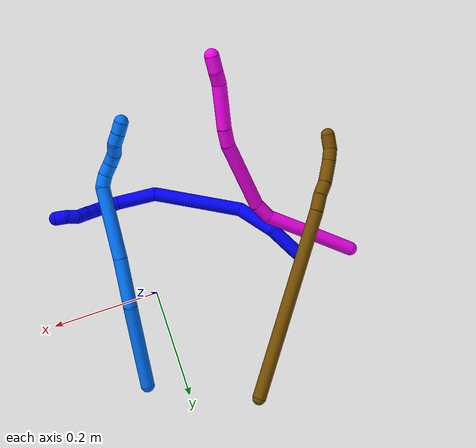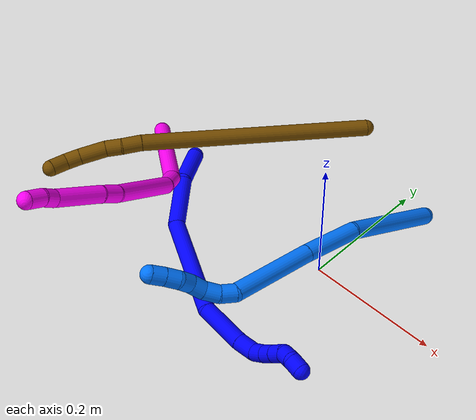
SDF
<sdf version="1.7">
 <world name="default">
  <model name="1">
   <static>0</static>
   <link name="1">
    <collision name="collision-cylinder-e_1_1_4">
     <pose>0.028466 -0.010663 0.007823 0.93786 1.13589 0.625313</pose>
     <geometry><cylinder><radius>0.0125</radius><length>0.062776</length></cylinder></geometry>
     <surface>
      <friction><ode><mu>1.16</mu><mu2>1.16</mu2><slip1>0</slip1><slip2>0</slip2></ode></friction>
      <contact><ode><kp>1e+06</kp><kd>1</kd><max_vel>0</max_vel><min_depth>0.001</min_depth></ode></contact>
     </surface>
    </collision>
    <visual name="visual-cylinder-e_1_1_4">
     <pose>0.028466 -0.010663 0.007823 0.93786 1.13589 0.625313</pose>
     <geometry><cylinder><radius>0.0125</radius><length>0.062776</length></cylinder></geometry>
     <material><ambient>0 0 1 1</ambient></material>
    </visual>
    <collision name="collision-cylinder-e_2_4_5">
     <pose>0.090402 -0.018773 0.031817 -0.156565 1.11587 -0.097831</pose>
     <geometry><cylinder><radius>0.0125</radius><length>0.074519</length></cylinder></geometry>
     <surface>
      <friction><ode><mu>1.16</mu><mu2>1.16</mu2><slip1>0</slip1><slip2>0</slip2></ode></friction>
      <contact><ode><kp>1e+06</kp><kd>1</kd><max_vel>0</max_vel><min_depth>0.001</min_depth></ode></contact>
     </surface>
    </collision>
    <visual name="visual-cylinder-e_2_4_5">
     <pose>0.090402 -0.018773 0.031817 -0.156565 1.11587 -0.097831</pose>
     <geometry><cylinder><radius>0.0125</radius><length>0.074519</length></cylinder></geometry>
     <material><ambient>0 0 1 1</ambient></material>
    </visual>
    <collision name="collision-cylinder-e_3_5_6">
     <pose>0.17591 -0.033404 0.107999 0.278877 0.694913 0.101567</pose>
     <geometry><cylinder><radius>0.0125</radius><length>0.162536</length></cylinder></geometry>
     <surface>
      <friction><ode><mu>1.16</mu><mu2>1.16</mu2><slip1>0</slip1><slip2>0</slip2></ode></friction>
      <contact><ode><kp>1e+06</kp><kd>1</kd><max_vel>0</max_vel><min_depth>0.001</min_depth></ode></contact>
     </surface>
    </collision>
    <visual name="visual-cylinder-e_3_5_6">
     <pose>0.17591 -0.033404 0.107999 0.278877 0.694913 0.101567</pose>
     <geometry><cylinder><radius>0.0125</radius><length>0.162536</length></cylinder></geometry>
     <material><ambient>0 0 1 1</ambient></material>
    </visual>
    <collision name="collision-cylinder-e_4_6_7">
     <pose>0.23801 -0.056555 0.201244 0.177658 0.289643 0.025977</pose>
     <geometry><cylinder><radius>0.0125</radius><length>0.070466</length></cylinder></geometry>
     <surface>
      <friction><ode><mu>1.16</mu><mu2>1.16</mu2><slip1>0</slip1><slip2>0</slip2></ode></friction>
      <contact><ode><kp>1e+06</kp><kd>1</kd><max_vel>0</max_vel><min_depth>0.001</min_depth></ode></contact>
     </surface>
    </collision>
    <visual name="visual-cylinder-e_4_6_7">
     <pose>0.23801 -0.056555 0.201244 0.177658 0.289643 0.025977</pose>
     <geometry><cylinder><radius>0.0125</radius><length>0.070466</length></cylinder></geometry>
     <material><ambient>0 0 1 1</ambient></material>
    </visual>
    <collision name="collision-cylinder-e_5_7_8">
     <pose>0.250615 -0.067047 0.248122 0.320253 0.175039 0.028341</pose>
     <geometry><cylinder><radius>0.0125</radius><length>0.029194</length></cylinder></geometry>
     <surface>
      <friction><ode><mu>1.16</mu><mu2>1.16</mu2><slip1>0</slip1><slip2>0</slip2></ode></friction>
      <contact><ode><kp>1e+06</kp><kd>1</kd><max_vel>0</max_vel><min_depth>0.001</min_depth></ode></contact>
     </surface>
    </collision>
    <visual name="visual-cylinder-e_5_7_8">
     <pose>0.250615 -0.067047 0.248122 0.320253 0.175039 0.028341</pose>
     <geometry><cylinder><radius>0.0125</radius><length>0.029194</length></cylinder></geometry>
     <material><ambient>0 0 1 1</ambient></material>
    </visual>
    <collision name="collision-cylinder-e_6_8_9">
     <pose>0.252883 -0.07829 0.269325 0.726447 -0.027111 -0.010305</pose>
     <geometry><cylinder><radius>0.0125</radius><length>0.020235</length></cylinder></geometry>
     <surface>
      <friction><ode><mu>1.16</mu><mu2>1.16</mu2><slip1>0</slip1><slip2>0</slip2></ode></friction>
      <contact><ode><kp>1e+06</kp><kd>1</kd><max_vel>0</max_vel><min_depth>0.001</min_depth></ode></contact>
     </surface>
    </collision>
    <visual name="visual-cylinder-e_6_8_9">
     <pose>0.252883 -0.07829 0.269325 0.726447 -0.027111 -0.010305</pose>
     <geometry><cylinder><radius>0.0125</radius><length>0.020235</length></cylinder></geometry>
     <material><ambient>0 0 1 1</ambient></material>
    </visual>
    <collision name="collision-cylinder-e_7_9_10">
     <pose>0.252086 -0.092704 0.283326 0.87398 -0.052032 -0.024309</pose>
     <geometry><cylinder><radius>0.0125</radius><length>0.020098</length></cylinder></geometry>
     <surface>
      <friction><ode><mu>1.16</mu><mu2>1.16</mu2><slip1>0</slip1><slip2>0</slip2></ode></friction>
      <contact><ode><kp>1e+06</kp><kd>1</kd><max_vel>0</max_vel><min_depth>0.001</min_depth></ode></contact>
     </surface>
    </collision>
    <visual name="visual-cylinder-e_7_9_10">
     <pose>0.252086 -0.092704 0.283326 0.87398 -0.052032 -0.024309</pose>
     <geometry><cylinder><radius>0.0125</radius><length>0.020098</length></cylinder></geometry>
     <material><ambient>0 0 1 1</ambient></material>
    </visual>
    <collision name="collision-cylinder-e_8_10_11">
     <pose>0.250657 -0.108091 0.29617 0.876581 -0.09039 -0.042388</pose>
     <geometry><cylinder><radius>0.0125</radius><length>0.020097</length></cylinder></geometry>
     <surface>
      <friction><ode><mu>1.16</mu><mu2>1.16</mu2><slip1>0</slip1><slip2>0</slip2></ode></friction>
      <contact><ode><kp>1e+06</kp><kd>1</kd><max_vel>0</max_vel><min_depth>0.001</min_depth></ode></contact>
     </surface>
    </collision>
    <visual name="visual-cylinder-e_8_10_11">
     <pose>0.250657 -0.108091 0.29617 0.876581 -0.09039 -0.042388</pose>
     <geometry><cylinder><radius>0.0125</radius><length>0.020097</length></cylinder></geometry>
     <material><ambient>0 0 1 1</ambient></material>
    </visual>
    <collision name="collision-cylinder-e_9_11_12">
     <pose>0.253348 -0.121557 0.309914 0.666477 0.367687 0.12855</pose>
     <geometry><cylinder><radius>0.0125</radius><length>0.02002</length></cylinder></geometry>
     <surface>
      <friction><ode><mu>1.16</mu><mu2>1.16</mu2><slip1>0</slip1><slip2>0</slip2></ode></friction>
      <contact><ode><kp>1e+06</kp><kd>1</kd><max_vel>0</max_vel><min_depth>0.001</min_depth></ode></contact>
     </surface>
    </collision>
    <visual name="visual-cylinder-e_9_11_12">
     <pose>0.253348 -0.121557 0.309914 0.666477 0.367687 0.12855</pose>
     <geometry><cylinder><radius>0.0125</radius><length>0.02002</length></cylinder></geometry>
     <material><ambient>0 0 1 1</ambient></material>
    </visual>
    <collision name="collision-cylinder-e_10_12_2">
     <pose>0.260594 -0.128933 0.326459 0.172205 0.372349 0.032513</pose>
     <geometry><cylinder><radius>0.0125</radius><length>0.020058</length></cylinder></geometry>
     <surface>
      <friction><ode><mu>1.16</mu><mu2>1.16</mu2><slip1>0</slip1><slip2>0</slip2></ode></friction>
      <contact><ode><kp>1e+06</kp><kd>1</kd><max_vel>0</max_vel><min_depth>0.001</min_depth></ode></contact>
     </surface>
    </collision>
    <visual name="visual-cylinder-e_10_12_2">
     <pose>0.260594 -0.128933 0.326459 0.172205 0.372349 0.032513</pose>
     <geometry><cylinder><radius>0.0125</radius><length>0.020058</length></cylinder></geometry>
     <material><ambient>0 0 1 1</ambient></material>
    </visual>
    <collision name="collision-sphere-2">
     <pose>0.264243 -0.130533 0.335663 0 -0 0</pose>
     <geometry><sphere><radius>0.0125</radius></sphere></geometry>
     <surface>
      <friction><ode><mu>1.16</mu><mu2>1.16</mu2><slip1>0</slip1><slip2>0</slip2></ode></friction>
      <contact><ode><kp>1e+06</kp><kd>1</kd><max_vel>0</max_vel><min_depth>0.001</min_depth></ode></contact>
     </surface>
    </collision>
    <visual name="visual-sphere-2">
     <pose>0.264243 -0.130533 0.335663 0 -0 0</pose>
     <geometry><sphere><radius>0.0125</radius></sphere></geometry>
     <material><ambient>0 0 1 1</ambient></material>
    </visual>
    <collision name="collision-sphere-12">
     <pose>0.256946 -0.127332 0.317256 0 -0 0</pose>
     <geometry><sphere><radius>0.0125</radius></sphere></geometry>
     <surface>
      <friction><ode><mu>1.16</mu><mu2>1.16</mu2><slip1>0</slip1><slip2>0</slip2></ode></friction>
      <contact><ode><kp>1e+06</kp><kd>1</kd><max_vel>0</max_vel><min_depth>0.001</min_depth></ode></contact>
     </surface>
    </collision>
    <visual name="visual-sphere-12">
     <pose>0.256946 -0.127332 0.317256 0 -0 0</pose>
     <geometry><sphere><radius>0.0125</radius></sphere></geometry>
     <material><ambient>0 0 1 1</ambient></material>
    </visual>
    <collision name="collision-sphere-11">
     <pose>0.24975 -0.115783 0.302572 0 -0 0</pose>
     <geometry><sphere><radius>0.0125</radius></sphere></geometry>
     <surface>
      <friction><ode><mu>1.16</mu><mu2>1.16</mu2><slip1>0</slip1><slip2>0</slip2></ode></friction>
      <contact><ode><kp>1e+06</kp><kd>1</kd><max_vel>0</max_vel><min_depth>0.001</min_depth></ode></contact>
     </surface>
    </collision>
    <visual name="visual-sphere-11">
     <pose>0.24975 -0.115783 0.302572 0 -0 0</pose>
     <geometry><sphere><radius>0.0125</radius></sphere></geometry>
     <material><ambient>0 0 1 1</ambient></material>
    </visual>
    <collision name="collision-sphere-10">
     <pose>0.251564 -0.1004 0.289767 0 -0 0</pose>
     <geometry><sphere><radius>0.0125</radius></sphere></geometry>
     <surface>
      <friction><ode><mu>1.16</mu><mu2>1.16</mu2><slip1>0</slip1><slip2>0</slip2></ode></friction>
      <contact><ode><kp>1e+06</kp><kd>1</kd><max_vel>0</max_vel><min_depth>0.001</min_depth></ode></contact>
     </surface>
    </collision>
    <visual name="visual-sphere-10">
     <pose>0.251564 -0.1004 0.289767 0 -0 0</pose>
     <geometry><sphere><radius>0.0125</radius></sphere></geometry>
     <material><ambient>0 0 1 1</ambient></material>
    </visual>
    <collision name="collision-sphere-9">
     <pose>0.252609 -0.085008 0.276886 0 -0 0</pose>
     <geometry><sphere><radius>0.0125</radius></sphere></geometry>
     <surface>
      <friction><ode><mu>1.16</mu><mu2>1.16</mu2><slip1>0</slip1><slip2>0</slip2></ode></friction>
      <contact><ode><kp>1e+06</kp><kd>1</kd><max_vel>0</max_vel><min_depth>0.001</min_depth></ode></contact>
     </surface>
    </collision>
    <visual name="visual-sphere-9">
     <pose>0.252609 -0.085008 0.276886 0 -0 0</pose>
     <geometry><sphere><radius>0.0125</radius></sphere></geometry>
     <material><ambient>0 0 1 1</ambient></material>
    </visual>
    <collision name="collision-sphere-4">
     <pose>0.056932 -0.021326 0.015645 0 -0 0</pose>
     <geometry><sphere><radius>0.0125</radius></sphere></geometry>
     <surface>
      <friction><ode><mu>1.16</mu><mu2>1.16</mu2><slip1>0</slip1><slip2>0</slip2></ode></friction>
      <contact><ode><kp>1e+06</kp><kd>1</kd><max_vel>0</max_vel><min_depth>0.001</min_depth></ode></contact>
     </surface>
    </collision>
    <visual name="visual-sphere-4">
     <pose>0.056932 -0.021326 0.015645 0 -0 0</pose>
     <geometry><sphere><radius>0.0125</radius></sphere></geometry>
     <material><ambient>0 0 1 1</ambient></material>
    </visual>
    <collision name="collision-sphere-1">
     <geometry><sphere><radius>0.0125</radius></sphere></geometry>
     <surface>
      <friction><ode><mu>1.16</mu><mu2>1.16</mu2><slip1>0</slip1><slip2>0</slip2></ode></friction>
      <contact><ode><kp>1e+06</kp><kd>1</kd><max_vel>0</max_vel><min_depth>0.001</min_depth></ode></contact>
     </surface>
    </collision>
    <visual name="visual-sphere-1">
     <geometry><sphere><radius>0.0125</radius></sphere></geometry>
     <material><ambient>0 0 1 1</ambient></material>
    </visual>
    <collision name="collision-sphere-8">
     <pose>0.253157 -0.071572 0.261765 0 -0 0</pose>
     <geometry><sphere><radius>0.0125</radius></sphere></geometry>
     <surface>
      <friction><ode><mu>1.16</mu><mu2>1.16</mu2><slip1>0</slip1><slip2>0</slip2></ode></friction>
      <contact><ode><kp>1e+06</kp><kd>1</kd><max_vel>0</max_vel><min_depth>0.001</min_depth></ode></contact>
     </surface>
    </collision>
    <visual name="visual-sphere-8">
     <pose>0.253157 -0.071572 0.261765 0 -0 0</pose>
     <geometry><sphere><radius>0.0125</radius></sphere></geometry>
     <material><ambient>0 0 1 1</ambient></material>
    </visual>
    <collision name="collision-sphere-5">
     <pose>0.123873 -0.016221 0.047988 0 -0 0</pose>
     <geometry><sphere><radius>0.0125</radius></sphere></geometry>
     <surface>
      <friction><ode><mu>1.16</mu><mu2>1.16</mu2><slip1>0</slip1><slip2>0</slip2></ode></friction>
      <contact><ode><kp>1e+06</kp><kd>1</kd><max_vel>0</max_vel><min_depth>0.001</min_depth></ode></contact>
     </surface>
    </collision>
    <visual name="visual-sphere-5">
     <pose>0.123873 -0.016221 0.047988 0 -0 0</pose>
     <geometry><sphere><radius>0.0125</radius></sphere></geometry>
     <material><ambient>0 0 1 1</ambient></material>
    </visual>
    <collision name="collision-sphere-6">
     <pose>0.227947 -0.050588 0.16801 0 -0 0</pose>
     <geometry><sphere><radius>0.0125</radius></sphere></geometry>
     <surface>
      <friction><ode><mu>1.16</mu><mu2>1.16</mu2><slip1>0</slip1><slip2>0</slip2></ode></friction>
      <contact><ode><kp>1e+06</kp><kd>1</kd><max_vel>0</max_vel><min_depth>0.001</min_depth></ode></contact>
     </surface>
    </collision>
    <visual name="visual-sphere-6">
     <pose>0.227947 -0.050588 0.16801 0 -0 0</pose>
     <geometry><sphere><radius>0.0125</radius></sphere></geometry>
     <material><ambient>0 0 1 1</ambient></material>
    </visual>
    <collision name="collision-sphere-7">
     <pose>0.248073 -0.062522 0.234479 0 -0 0</pose>
     <geometry><sphere><radius>0.0125</radius></sphere></geometry>
     <surface>
      <friction><ode><mu>1.16</mu><mu2>1.16</mu2><slip1>0</slip1><slip2>0</slip2></ode></friction>
      <contact><ode><kp>1e+06</kp><kd>1</kd><max_vel>0</max_vel><min_depth>0.001</min_depth></ode></contact>
     </surface>
    </collision>
    <visual name="visual-sphere-7">
     <pose>0.248073 -0.062522 0.234479 0 -0 0</pose>
     <geometry><sphere><radius>0.0125</radius></sphere></geometry>
     <material><ambient>0 0 1 1</ambient></material>
    </visual>
    <inertial>
     <pose>0.173447 -0.048159 0.143378 0 -0 0</pose>
     <mass>0.5</mass>
     <inertia>
      <ixx>0.000397</ixx>
      <ixy>0</ixy>
      <ixz>0</ixz>
      <iyy>0.000476</iyy>
      <iyz>0</iyz>
      <izz>-0.000179</izz>
     </inertia>
    </inertial>
   </link>
   <pose>-0.270213 0.012287 0.039885 -1.75525 0.186822 -1.37302</pose>
  </model>
  <model name="10">
   <static>0</static>
   <link name="10">
    <collision name="collision-cylinder-e_1_1_4">
     <pose>-0.002764 0.005799 0.043371 -0.132924 -0.063086 0.0042</pose>
     <geometry><cylinder><radius>0.0125</radius><length>0.087688</length></cylinder></geometry>
     <surface>
      <friction><ode><mu>1.16</mu><mu2>1.16</mu2><slip1>0</slip1><slip2>0</slip2></ode></friction>
      <contact><ode><kp>1e+06</kp><kd>1</kd><max_vel>0</max_vel><min_depth>0.001</min_depth></ode></contact>
     </surface>
    </collision>
    <visual name="visual-cylinder-e_1_1_4">
     <pose>-0.002764 0.005799 0.043371 -0.132924 -0.063086 0.0042</pose>
     <geometry><cylinder><radius>0.0125</radius><length>0.087688</length></cylinder></geometry>
     <material><ambient>1 0 0.964706 1</ambient></material>
    </visual>
    <collision name="collision-cylinder-e_2_4_5">
     <pose>-0.007299 0.017861 0.129582 -0.145164 -0.040886 0.002973</pose>
     <geometry><cylinder><radius>0.0125</radius><length>0.086664</length></cylinder></geometry>
     <surface>
      <friction><ode><mu>1.16</mu><mu2>1.16</mu2><slip1>0</slip1><slip2>0</slip2></ode></friction>
      <contact><ode><kp>1e+06</kp><kd>1</kd><max_vel>0</max_vel><min_depth>0.001</min_depth></ode></contact>
     </surface>
    </collision>
    <visual name="visual-cylinder-e_2_4_5">
     <pose>-0.007299 0.017861 0.129582 -0.145164 -0.040886 0.002973</pose>
     <geometry><cylinder><radius>0.0125</radius><length>0.086664</length></cylinder></geometry>
     <material><ambient>1 0 0.964706 1</ambient></material>
    </visual>
    <collision name="collision-cylinder-e_3_5_6">
     <pose>-0.012014 0.020205 0.188835 0.234375 -0.172709 -0.020383</pose>
     <geometry><cylinder><radius>0.0125</radius><length>0.034259</length></cylinder></geometry>
     <surface>
      <friction><ode><mu>1.16</mu><mu2>1.16</mu2><slip1>0</slip1><slip2>0</slip2></ode></friction>
      <contact><ode><kp>1e+06</kp><kd>1</kd><max_vel>0</max_vel><min_depth>0.001</min_depth></ode></contact>
     </surface>
    </collision>
    <visual name="visual-cylinder-e_3_5_6">
     <pose>-0.012014 0.020205 0.188835 0.234375 -0.172709 -0.020383</pose>
     <geometry><cylinder><radius>0.0125</radius><length>0.034259</length></cylinder></geometry>
     <material><ambient>1 0 0.964706 1</ambient></material>
    </visual>
    <collision name="collision-cylinder-e_4_6_7">
     <pose>-0.036975 -0.014791 0.260003 0.516241 -0.336411 -0.089603</pose>
     <geometry><cylinder><radius>0.0125</radius><length>0.133396</length></cylinder></geometry>
     <surface>
      <friction><ode><mu>1.16</mu><mu2>1.16</mu2><slip1>0</slip1><slip2>0</slip2></ode></friction>
      <contact><ode><kp>1e+06</kp><kd>1</kd><max_vel>0</max_vel><min_depth>0.001</min_depth></ode></contact>
     </surface>
    </collision>
    <visual name="visual-cylinder-e_4_6_7">
     <pose>-0.036975 -0.014791 0.260003 0.516241 -0.336411 -0.089603</pose>
     <geometry><cylinder><radius>0.0125</radius><length>0.133396</length></cylinder></geometry>
     <material><ambient>1 0 0.964706 1</ambient></material>
    </visual>
    <collision name="collision-cylinder-e_5_7_8">
     <pose>-0.064152 -0.055715 0.3254 0.746562 -0.341911 -0.135021</pose>
     <geometry><cylinder><radius>0.0125</radius><length>0.030779</length></cylinder></geometry>
     <surface>
      <friction><ode><mu>1.16</mu><mu2>1.16</mu2><slip1>0</slip1><slip2>0</slip2></ode></friction>
      <contact><ode><kp>1e+06</kp><kd>1</kd><max_vel>0</max_vel><min_depth>0.001</min_depth></ode></contact>
     </surface>
    </collision>
    <visual name="visual-cylinder-e_5_7_8">
     <pose>-0.064152 -0.055715 0.3254 0.746562 -0.341911 -0.135021</pose>
     <geometry><cylinder><radius>0.0125</radius><length>0.030779</length></cylinder></geometry>
     <material><ambient>1 0 0.964706 1</ambient></material>
    </visual>
    <collision name="collision-cylinder-e_6_8_9">
     <pose>-0.077958 -0.094463 0.360178 0.875005 -0.225703 -0.10592</pose>
     <geometry><cylinder><radius>0.0125</radius><length>0.077269</length></cylinder></geometry>
     <surface>
      <friction><ode><mu>1.16</mu><mu2>1.16</mu2><slip1>0</slip1><slip2>0</slip2></ode></friction>
      <contact><ode><kp>1e+06</kp><kd>1</kd><max_vel>0</max_vel><min_depth>0.001</min_depth></ode></contact>
     </surface>
    </collision>
    <visual name="visual-cylinder-e_6_8_9">
     <pose>-0.077958 -0.094463 0.360178 0.875005 -0.225703 -0.10592</pose>
     <geometry><cylinder><radius>0.0125</radius><length>0.077269</length></cylinder></geometry>
     <material><ambient>1 0 0.964706 1</ambient></material>
    </visual>
    <collision name="collision-cylinder-e_7_9_10">
     <pose>-0.09162 -0.129718 0.392669 0.650209 -0.445827 -0.152515</pose>
     <geometry><cylinder><radius>0.0125</radius><length>0.023265</length></cylinder></geometry>
     <surface>
      <friction><ode><mu>1.16</mu><mu2>1.16</mu2><slip1>0</slip1><slip2>0</slip2></ode></friction>
      <contact><ode><kp>1e+06</kp><kd>1</kd><max_vel>0</max_vel><min_depth>0.001</min_depth></ode></contact>
     </surface>
    </collision>
    <visual name="visual-cylinder-e_7_9_10">
     <pose>-0.09162 -0.129718 0.392669 0.650209 -0.445827 -0.152515</pose>
     <geometry><cylinder><radius>0.0125</radius><length>0.023265</length></cylinder></geometry>
     <material><ambient>1 0 0.964706 1</ambient></material>
    </visual>
    <collision name="collision-cylinder-e_8_10_2">
     <pose>-0.099459 -0.144874 0.410641 0.7411 -0.213223 -0.083104</pose>
     <geometry><cylinder><radius>0.0125</radius><length>0.026681</length></cylinder></geometry>
     <surface>
      <friction><ode><mu>1.16</mu><mu2>1.16</mu2><slip1>0</slip1><slip2>0</slip2></ode></friction>
      <contact><ode><kp>1e+06</kp><kd>1</kd><max_vel>0</max_vel><min_depth>0.001</min_depth></ode></contact>
     </surface>
    </collision>
    <visual name="visual-cylinder-e_8_10_2">
     <pose>-0.099459 -0.144874 0.410641 0.7411 -0.213223 -0.083104</pose>
     <geometry><cylinder><radius>0.0125</radius><length>0.026681</length></cylinder></geometry>
     <material><ambient>1 0 0.964706 1</ambient></material>
    </visual>
    <collision name="collision-sphere-2">
     <pose>-0.102282 -0.153676 0.42026 0 -0 0</pose>
     <geometry><sphere><radius>0.0125</radius></sphere></geometry>
     <surface>
      <friction><ode><mu>1.16</mu><mu2>1.16</mu2><slip1>0</slip1><slip2>0</slip2></ode></friction>
      <contact><ode><kp>1e+06</kp><kd>1</kd><max_vel>0</max_vel><min_depth>0.001</min_depth></ode></contact>
     </surface>
    </collision>
    <visual name="visual-sphere-2">
     <pose>-0.102282 -0.153676 0.42026 0 -0 0</pose>
     <geometry><sphere><radius>0.0125</radius></sphere></geometry>
     <material><ambient>1 0 0.964706 1</ambient></material>
    </visual>
    <collision name="collision-sphere-10">
     <pose>-0.096636 -0.136071 0.401023 0 -0 0</pose>
     <geometry><sphere><radius>0.0125</radius></sphere></geometry>
     <surface>
      <friction><ode><mu>1.16</mu><mu2>1.16</mu2><slip1>0</slip1><slip2>0</slip2></ode></friction>
      <contact><ode><kp>1e+06</kp><kd>1</kd><max_vel>0</max_vel><min_depth>0.001</min_depth></ode></contact>
     </surface>
    </collision>
    <visual name="visual-sphere-10">
     <pose>-0.096636 -0.136071 0.401023 0 -0 0</pose>
     <geometry><sphere><radius>0.0125</radius></sphere></geometry>
     <material><ambient>1 0 0.964706 1</ambient></material>
    </visual>
    <collision name="collision-sphere-9">
     <pose>-0.086604 -0.123364 0.384315 0 -0 0</pose>
     <geometry><sphere><radius>0.0125</radius></sphere></geometry>
     <surface>
      <friction><ode><mu>1.16</mu><mu2>1.16</mu2><slip1>0</slip1><slip2>0</slip2></ode></friction>
      <contact><ode><kp>1e+06</kp><kd>1</kd><max_vel>0</max_vel><min_depth>0.001</min_depth></ode></contact>
     </surface>
    </collision>
    <visual name="visual-sphere-9">
     <pose>-0.086604 -0.123364 0.384315 0 -0 0</pose>
     <geometry><sphere><radius>0.0125</radius></sphere></geometry>
     <material><ambient>1 0 0.964706 1</ambient></material>
    </visual>
    <collision name="collision-sphere-4">
     <pose>-0.005528 0.011598 0.086741 0 -0 0</pose>
     <geometry><sphere><radius>0.0125</radius></sphere></geometry>
     <surface>
      <friction><ode><mu>1.16</mu><mu2>1.16</mu2><slip1>0</slip1><slip2>0</slip2></ode></friction>
      <contact><ode><kp>1e+06</kp><kd>1</kd><max_vel>0</max_vel><min_depth>0.001</min_depth></ode></contact>
     </surface>
    </collision>
    <visual name="visual-sphere-4">
     <pose>-0.005528 0.011598 0.086741 0 -0 0</pose>
     <geometry><sphere><radius>0.0125</radius></sphere></geometry>
     <material><ambient>1 0 0.964706 1</ambient></material>
    </visual>
    <collision name="collision-sphere-1">
     <geometry><sphere><radius>0.0125</radius></sphere></geometry>
     <surface>
      <friction><ode><mu>1.16</mu><mu2>1.16</mu2><slip1>0</slip1><slip2>0</slip2></ode></friction>
      <contact><ode><kp>1e+06</kp><kd>1</kd><max_vel>0</max_vel><min_depth>0.001</min_depth></ode></contact>
     </surface>
    </collision>
    <visual name="visual-sphere-1">
     <geometry><sphere><radius>0.0125</radius></sphere></geometry>
     <material><ambient>1 0 0.964706 1</ambient></material>
    </visual>
    <collision name="collision-sphere-8">
     <pose>-0.069312 -0.065561 0.336042 0 -0 0</pose>
     <geometry><sphere><radius>0.0125</radius></sphere></geometry>
     <surface>
      <friction><ode><mu>1.16</mu><mu2>1.16</mu2><slip1>0</slip1><slip2>0</slip2></ode></friction>
      <contact><ode><kp>1e+06</kp><kd>1</kd><max_vel>0</max_vel><min_depth>0.001</min_depth></ode></contact>
     </surface>
    </collision>
    <visual name="visual-sphere-8">
     <pose>-0.069312 -0.065561 0.336042 0 -0 0</pose>
     <geometry><sphere><radius>0.0125</radius></sphere></geometry>
     <material><ambient>1 0 0.964706 1</ambient></material>
    </visual>
    <collision name="collision-sphere-5">
     <pose>-0.009071 0.024124 0.172422 0 -0 0</pose>
     <geometry><sphere><radius>0.0125</radius></sphere></geometry>
     <surface>
      <friction><ode><mu>1.16</mu><mu2>1.16</mu2><slip1>0</slip1><slip2>0</slip2></ode></friction>
      <contact><ode><kp>1e+06</kp><kd>1</kd><max_vel>0</max_vel><min_depth>0.001</min_depth></ode></contact>
     </surface>
    </collision>
    <visual name="visual-sphere-5">
     <pose>-0.009071 0.024124 0.172422 0 -0 0</pose>
     <geometry><sphere><radius>0.0125</radius></sphere></geometry>
     <material><ambient>1 0 0.964706 1</ambient></material>
    </visual>
    <collision name="collision-sphere-6">
     <pose>-0.014958 0.016286 0.205249 0 -0 0</pose>
     <geometry><sphere><radius>0.0125</radius></sphere></geometry>
     <surface>
      <friction><ode><mu>1.16</mu><mu2>1.16</mu2><slip1>0</slip1><slip2>0</slip2></ode></friction>
      <contact><ode><kp>1e+06</kp><kd>1</kd><max_vel>0</max_vel><min_depth>0.001</min_depth></ode></contact>
     </surface>
    </collision>
    <visual name="visual-sphere-6">
     <pose>-0.014958 0.016286 0.205249 0 -0 0</pose>
     <geometry><sphere><radius>0.0125</radius></sphere></geometry>
     <material><ambient>1 0 0.964706 1</ambient></material>
    </visual>
    <collision name="collision-sphere-7">
     <pose>-0.058992 -0.045869 0.314757 0 -0 0</pose>
     <geometry><sphere><radius>0.0125</radius></sphere></geometry>
     <surface>
      <friction><ode><mu>1.16</mu><mu2>1.16</mu2><slip1>0</slip1><slip2>0</slip2></ode></friction>
      <contact><ode><kp>1e+06</kp><kd>1</kd><max_vel>0</max_vel><min_depth>0.001</min_depth></ode></contact>
     </surface>
    </collision>
    <visual name="visual-sphere-7">
     <pose>-0.058992 -0.045869 0.314757 0 -0 0</pose>
     <geometry><sphere><radius>0.0125</radius></sphere></geometry>
     <material><ambient>1 0 0.964706 1</ambient></material>
    </visual>
    <inertial>
     <pose>-0.038005 -0.030243 0.228247 0 -0 0</pose>
     <mass>0.5</mass>
     <inertia>
      <ixx>0.00033</ixx>
      <ixy>0</ixy>
      <ixz>0</ixz>
      <iyy>0.000299</iyy>
      <iyz>0</iyz>
      <izz>0.000234</izz>
     </inertia>
    </inertial>
   </link>
   <pose>-0.368846 0.033977 0.014341 -0.201619 1.28245 -1.0138</pose>
  </model>
  <model name="12">
   <static>0</static>
   <link name="12">
    <collision name="collision-cylinder-e_1_1_4">
     <pose>-0.102257 -0.126655 -0.070994 2.08168 -0.613588 -0.991415</pose>
     <geometry><cylinder><radius>0.0125</radius><length>0.35518</length></cylinder></geometry>
     <surface>
      <friction><ode><mu>1.16</mu><mu2>1.16</mu2><slip1>0</slip1><slip2>0</slip2></ode></friction>
      <contact><ode><kp>1e+06</kp><kd>1</kd><max_vel>0</max_vel><min_depth>0.001</min_depth></ode></contact>
     </surface>
    </collision>
    <visual name="visual-cylinder-e_1_1_4">
     <pose>-0.102257 -0.126655 -0.070994 2.08168 -0.613588 -0.991415</pose>
     <geometry><cylinder><radius>0.0125</radius><length>0.35518</length></cylinder></geometry>
     <material><ambient>0.466667 0.301961 0 1</ambient></material>
    </visual>
    <collision name="collision-cylinder-e_2_4_5">
     <pose>-0.214048 -0.262714 -0.148843 2.20077 -0.686376 -1.22511</pose>
     <geometry><cylinder><radius>0.0125</radius><length>0.030087</length></cylinder></geometry>
     <surface>
      <friction><ode><mu>1.16</mu><mu2>1.16</mu2><slip1>0</slip1><slip2>0</slip2></ode></friction>
      <contact><ode><kp>1e+06</kp><kd>1</kd><max_vel>0</max_vel><min_depth>0.001</min_depth></ode></contact>
     </surface>
    </collision>
    <visual name="visual-cylinder-e_2_4_5">
     <pose>-0.214048 -0.262714 -0.148843 2.20077 -0.686376 -1.22511</pose>
     <geometry><cylinder><radius>0.0125</radius><length>0.030087</length></cylinder></geometry>
     <material><ambient>0.466667 0.301961 0 1</ambient></material>
    </visual>
    <collision name="collision-cylinder-e_3_5_6">
     <pose>-0.232404 -0.279489 -0.159376 2.0336 -0.819608 -1.22441</pose>
     <geometry><cylinder><radius>0.0125</radius><length>0.024142</length></cylinder></geometry>
     <surface>
      <friction><ode><mu>1.16</mu><mu2>1.16</mu2><slip1>0</slip1><slip2>0</slip2></ode></friction>
      <contact><ode><kp>1e+06</kp><kd>1</kd><max_vel>0</max_vel><min_depth>0.001</min_depth></ode></contact>
     </surface>
    </collision>
    <visual name="visual-cylinder-e_3_5_6">
     <pose>-0.232404 -0.279489 -0.159376 2.0336 -0.819608 -1.22441</pose>
     <geometry><cylinder><radius>0.0125</radius><length>0.024142</length></cylinder></geometry>
     <material><ambient>0.466667 0.301961 0 1</ambient></material>
    </visual>
    <collision name="collision-cylinder-e_4_6_7">
     <pose>-0.255957 -0.29758 -0.172493 2.29276 -0.800829 -1.50546</pose>
     <geometry><cylinder><radius>0.0125</radius><length>0.041035</length></cylinder></geometry>
     <surface>
      <friction><ode><mu>1.16</mu><mu2>1.16</mu2><slip1>0</slip1><slip2>0</slip2></ode></friction>
      <contact><ode><kp>1e+06</kp><kd>1</kd><max_vel>0</max_vel><min_depth>0.001</min_depth></ode></contact>
     </surface>
    </collision>
    <visual name="visual-cylinder-e_4_6_7">
     <pose>-0.255957 -0.29758 -0.172493 2.29276 -0.800829 -1.50546</pose>
     <geometry><cylinder><radius>0.0125</radius><length>0.041035</length></cylinder></geometry>
     <material><ambient>0.466667 0.301961 0 1</ambient></material>
    </visual>
    <collision name="collision-cylinder-e_5_7_8">
     <pose>-0.278715 -0.314027 -0.188153 2.39743 -0.759405 -1.59312</pose>
     <geometry><cylinder><radius>0.0125</radius><length>0.023321</length></cylinder></geometry>
     <surface>
      <friction><ode><mu>1.16</mu><mu2>1.16</mu2><slip1>0</slip1><slip2>0</slip2></ode></friction>
      <contact><ode><kp>1e+06</kp><kd>1</kd><max_vel>0</max_vel><min_depth>0.001</min_depth></ode></contact>
     </surface>
    </collision>
    <visual name="visual-cylinder-e_5_7_8">
     <pose>-0.278715 -0.314027 -0.188153 2.39743 -0.759405 -1.59312</pose>
     <geometry><cylinder><radius>0.0125</radius><length>0.023321</length></cylinder></geometry>
     <material><ambient>0.466667 0.301961 0 1</ambient></material>
    </visual>
    <collision name="collision-cylinder-e_6_8_2">
     <pose>-0.291993 -0.32631 -0.204451 2.56488 -0.411777 -1.22693</pose>
     <geometry><cylinder><radius>0.0125</radius><length>0.026235</length></cylinder></geometry>
     <surface>
      <friction><ode><mu>1.16</mu><mu2>1.16</mu2><slip1>0</slip1><slip2>0</slip2></ode></friction>
      <contact><ode><kp>1e+06</kp><kd>1</kd><max_vel>0</max_vel><min_depth>0.001</min_depth></ode></contact>
     </surface>
    </collision>
    <visual name="visual-cylinder-e_6_8_2">
     <pose>-0.291993 -0.32631 -0.204451 2.56488 -0.411777 -1.22693</pose>
     <geometry><cylinder><radius>0.0125</radius><length>0.026235</length></cylinder></geometry>
     <material><ambient>0.466667 0.301961 0 1</ambient></material>
    </visual>
    <collision name="collision-sphere-2">
     <pose>-0.297243 -0.332865 -0.214528 0 -0 0</pose>
     <geometry><sphere><radius>0.0125</radius></sphere></geometry>
     <surface>
      <friction><ode><mu>1.16</mu><mu2>1.16</mu2><slip1>0</slip1><slip2>0</slip2></ode></friction>
      <contact><ode><kp>1e+06</kp><kd>1</kd><max_vel>0</max_vel><min_depth>0.001</min_depth></ode></contact>
     </surface>
    </collision>
    <visual name="visual-sphere-2">
     <pose>-0.297243 -0.332865 -0.214528 0 -0 0</pose>
     <geometry><sphere><radius>0.0125</radius></sphere></geometry>
     <material><ambient>0.466667 0.301961 0 1</ambient></material>
    </visual>
    <collision name="collision-sphere-4">
     <pose>-0.204515 -0.253311 -0.141987 0 -0 0</pose>
     <geometry><sphere><radius>0.0125</radius></sphere></geometry>
     <surface>
      <friction><ode><mu>1.16</mu><mu2>1.16</mu2><slip1>0</slip1><slip2>0</slip2></ode></friction>
      <contact><ode><kp>1e+06</kp><kd>1</kd><max_vel>0</max_vel><min_depth>0.001</min_depth></ode></contact>
     </surface>
    </collision>
    <visual name="visual-sphere-4">
     <pose>-0.204515 -0.253311 -0.141987 0 -0 0</pose>
     <geometry><sphere><radius>0.0125</radius></sphere></geometry>
     <material><ambient>0.466667 0.301961 0 1</ambient></material>
    </visual>
    <collision name="collision-sphere-1">
     <geometry><sphere><radius>0.0125</radius></sphere></geometry>
     <surface>
      <friction><ode><mu>1.16</mu><mu2>1.16</mu2><slip1>0</slip1><slip2>0</slip2></ode></friction>
      <contact><ode><kp>1e+06</kp><kd>1</kd><max_vel>0</max_vel><min_depth>0.001</min_depth></ode></contact>
     </surface>
    </collision>
    <visual name="visual-sphere-1">
     <geometry><sphere><radius>0.0125</radius></sphere></geometry>
     <material><ambient>0.466667 0.301961 0 1</ambient></material>
    </visual>
    <collision name="collision-sphere-8">
     <pose>-0.286743 -0.319755 -0.194374 0 -0 0</pose>
     <geometry><sphere><radius>0.0125</radius></sphere></geometry>
     <surface>
      <friction><ode><mu>1.16</mu><mu2>1.16</mu2><slip1>0</slip1><slip2>0</slip2></ode></friction>
      <contact><ode><kp>1e+06</kp><kd>1</kd><max_vel>0</max_vel><min_depth>0.001</min_depth></ode></contact>
     </surface>
    </collision>
    <visual name="visual-sphere-8">
     <pose>-0.286743 -0.319755 -0.194374 0 -0 0</pose>
     <geometry><sphere><radius>0.0125</radius></sphere></geometry>
     <material><ambient>0.466667 0.301961 0 1</ambient></material>
    </visual>
    <collision name="collision-sphere-5">
     <pose>-0.223582 -0.272117 -0.155698 0 -0 0</pose>
     <geometry><sphere><radius>0.0125</radius></sphere></geometry>
     <surface>
      <friction><ode><mu>1.16</mu><mu2>1.16</mu2><slip1>0</slip1><slip2>0</slip2></ode></friction>
      <contact><ode><kp>1e+06</kp><kd>1</kd><max_vel>0</max_vel><min_depth>0.001</min_depth></ode></contact>
     </surface>
    </collision>
    <visual name="visual-sphere-5">
     <pose>-0.223582 -0.272117 -0.155698 0 -0 0</pose>
     <geometry><sphere><radius>0.0125</radius></sphere></geometry>
     <material><ambient>0.466667 0.301961 0 1</ambient></material>
    </visual>
    <collision name="collision-sphere-6">
     <pose>-0.241227 -0.286861 -0.163055 0 -0 0</pose>
     <geometry><sphere><radius>0.0125</radius></sphere></geometry>
     <surface>
      <friction><ode><mu>1.16</mu><mu2>1.16</mu2><slip1>0</slip1><slip2>0</slip2></ode></friction>
      <contact><ode><kp>1e+06</kp><kd>1</kd><max_vel>0</max_vel><min_depth>0.001</min_depth></ode></contact>
     </surface>
    </collision>
    <visual name="visual-sphere-6">
     <pose>-0.241227 -0.286861 -0.163055 0 -0 0</pose>
     <geometry><sphere><radius>0.0125</radius></sphere></geometry>
     <material><ambient>0.466667 0.301961 0 1</ambient></material>
    </visual>
    <collision name="collision-sphere-7">
     <pose>-0.270687 -0.308299 -0.181932 0 -0 0</pose>
     <geometry><sphere><radius>0.0125</radius></sphere></geometry>
     <surface>
      <friction><ode><mu>1.16</mu><mu2>1.16</mu2><slip1>0</slip1><slip2>0</slip2></ode></friction>
      <contact><ode><kp>1e+06</kp><kd>1</kd><max_vel>0</max_vel><min_depth>0.001</min_depth></ode></contact>
     </surface>
    </collision>
    <visual name="visual-sphere-7">
     <pose>-0.270687 -0.308299 -0.181932 0 -0 0</pose>
     <geometry><sphere><radius>0.0125</radius></sphere></geometry>
     <material><ambient>0.466667 0.301961 0 1</ambient></material>
    </visual>
    <inertial>
     <pose>-0.146068 -0.175465 -0.100743 0 -0 0</pose>
     <mass>0.5</mass>
     <inertia>
      <ixx>-0.00092</ixx>
      <ixy>0</ixy>
      <ixz>0</ixz>
      <iyy>-0.002024</iyy>
      <iyz>0</iyz>
      <izz>0.004835</izz>
     </inertia>
    </inertial>
   </link>
   <pose>-0.11971 0.240228 0.045101 -1.65335 -0.826995 0.610473</pose>
  </model>
  <model name="14">
   <static>0</static>
   <link name="14">
    <collision name="collision-cylinder-e_1_1_4">
     <pose>-0.027131 -0.056421 0.049993 0.845735 -0.345471 -0.156711</pose>
     <geometry><cylinder><radius>0.0125</radius><length>0.160234</length></cylinder></geometry>
     <surface>
      <friction><ode><mu>1.16</mu><mu2>1.16</mu2><slip1>0</slip1><slip2>0</slip2></ode></friction>
      <contact><ode><kp>1e+06</kp><kd>1</kd><max_vel>0</max_vel><min_depth>0.001</min_depth></ode></contact>
     </surface>
    </collision>
    <visual name="visual-cylinder-e_1_1_4">
     <pose>-0.027131 -0.056421 0.049993 0.845735 -0.345471 -0.156711</pose>
     <geometry><cylinder><radius>0.0125</radius><length>0.160234</length></cylinder></geometry>
     <material><ambient>0 0.462745 1 1</ambient></material>
    </visual>
    <collision name="collision-cylinder-e_2_4_5">
     <pose>-0.067928 -0.149919 0.117421 1.13122 -0.321949 -0.205428</pose>
     <geometry><cylinder><radius>0.0125</radius><length>0.086381</length></cylinder></geometry>
     <surface>
      <friction><ode><mu>1.16</mu><mu2>1.16</mu2><slip1>0</slip1><slip2>0</slip2></ode></friction>
      <contact><ode><kp>1e+06</kp><kd>1</kd><max_vel>0</max_vel><min_depth>0.001</min_depth></ode></contact>
     </surface>
    </collision>
    <visual name="visual-cylinder-e_2_4_5">
     <pose>-0.067928 -0.149919 0.117421 1.13122 -0.321949 -0.205428</pose>
     <geometry><cylinder><radius>0.0125</radius><length>0.086381</length></cylinder></geometry>
     <material><ambient>0 0.462745 1 1</ambient></material>
    </visual>
    <collision name="collision-cylinder-e_3_5_6">
     <pose>-0.099453 -0.243109 0.159914 1.15083 -0.282825 -0.18416</pose>
     <geometry><cylinder><radius>0.0125</radius><length>0.127994</length></cylinder></geometry>
     <surface>
      <friction><ode><mu>1.16</mu><mu2>1.16</mu2><slip1>0</slip1><slip2>0</slip2></ode></friction>
      <contact><ode><kp>1e+06</kp><kd>1</kd><max_vel>0</max_vel><min_depth>0.001</min_depth></ode></contact>
     </surface>
    </collision>
    <visual name="visual-cylinder-e_3_5_6">
     <pose>-0.099453 -0.243109 0.159914 1.15083 -0.282825 -0.18416</pose>
     <geometry><cylinder><radius>0.0125</radius><length>0.127994</length></cylinder></geometry>
     <material><ambient>0 0.462745 1 1</ambient></material>
    </visual>
    <collision name="collision-cylinder-e_4_6_7">
     <pose>-0.124816 -0.306634 0.188289 1.14981 -0.745933 -0.496566</pose>
     <geometry><cylinder><radius>0.0125</radius><length>0.022111</length></cylinder></geometry>
     <surface>
      <friction><ode><mu>1.16</mu><mu2>1.16</mu2><slip1>0</slip1><slip2>0</slip2></ode></friction>
      <contact><ode><kp>1e+06</kp><kd>1</kd><max_vel>0</max_vel><min_depth>0.001</min_depth></ode></contact>
     </surface>
    </collision>
    <visual name="visual-cylinder-e_4_6_7">
     <pose>-0.124816 -0.306634 0.188289 1.14981 -0.745933 -0.496566</pose>
     <geometry><cylinder><radius>0.0125</radius><length>0.022111</length></cylinder></geometry>
     <material><ambient>0 0.462745 1 1</ambient></material>
    </visual>
    <collision name="collision-cylinder-e_5_7_8">
     <pose>-0.141542 -0.318636 0.196064 0.80026 -0.964256 -0.435648</pose>
     <geometry><cylinder><radius>0.0125</radius><length>0.022452</length></cylinder></geometry>
     <surface>
      <friction><ode><mu>1.16</mu><mu2>1.16</mu2><slip1>0</slip1><slip2>0</slip2></ode></friction>
      <contact><ode><kp>1e+06</kp><kd>1</kd><max_vel>0</max_vel><min_depth>0.001</min_depth></ode></contact>
     </surface>
    </collision>
    <visual name="visual-cylinder-e_5_7_8">
     <pose>-0.141542 -0.318636 0.196064 0.80026 -0.964256 -0.435648</pose>
     <geometry><cylinder><radius>0.0125</radius><length>0.022452</length></cylinder></geometry>
     <material><ambient>0 0.462745 1 1</ambient></material>
    </visual>
    <collision name="collision-cylinder-e_6_8_9">
     <pose>-0.158313 -0.325646 0.207107 0.351856 -0.821891 -0.154616</pose>
     <geometry><cylinder><radius>0.0125</radius><length>0.020609</length></cylinder></geometry>
     <surface>
      <friction><ode><mu>1.16</mu><mu2>1.16</mu2><slip1>0</slip1><slip2>0</slip2></ode></friction>
      <contact><ode><kp>1e+06</kp><kd>1</kd><max_vel>0</max_vel><min_depth>0.001</min_depth></ode></contact>
     </surface>
    </collision>
    <visual name="visual-cylinder-e_6_8_9">
     <pose>-0.158313 -0.325646 0.207107 0.351856 -0.821891 -0.154616</pose>
     <geometry><cylinder><radius>0.0125</radius><length>0.020609</length></cylinder></geometry>
     <material><ambient>0 0.462745 1 1</ambient></material>
    </visual>
    <collision name="collision-cylinder-e_7_9_10">
     <pose>-0.170991 -0.331986 0.221379 0.471842 -0.53638 -0.131936</pose>
     <geometry><cylinder><radius>0.0125</radius><length>0.020078</length></cylinder></geometry>
     <surface>
      <friction><ode><mu>1.16</mu><mu2>1.16</mu2><slip1>0</slip1><slip2>0</slip2></ode></friction>
      <contact><ode><kp>1e+06</kp><kd>1</kd><max_vel>0</max_vel><min_depth>0.001</min_depth></ode></contact>
     </surface>
    </collision>
    <visual name="visual-cylinder-e_7_9_10">
     <pose>-0.170991 -0.331986 0.221379 0.471842 -0.53638 -0.131936</pose>
     <geometry><cylinder><radius>0.0125</radius><length>0.020078</length></cylinder></geometry>
     <material><ambient>0 0.462745 1 1</ambient></material>
    </visual>
    <collision name="collision-cylinder-e_8_10_11">
     <pose>-0.183725 -0.340301 0.233993 0.728181 -0.855856 -0.344194</pose>
     <geometry><cylinder><radius>0.0125</radius><length>0.020138</length></cylinder></geometry>
     <surface>
      <friction><ode><mu>1.16</mu><mu2>1.16</mu2><slip1>0</slip1><slip2>0</slip2></ode></friction>
      <contact><ode><kp>1e+06</kp><kd>1</kd><max_vel>0</max_vel><min_depth>0.001</min_depth></ode></contact>
     </surface>
    </collision>
    <visual name="visual-cylinder-e_8_10_11">
     <pose>-0.183725 -0.340301 0.233993 0.728181 -0.855856 -0.344194</pose>
     <geometry><cylinder><radius>0.0125</radius><length>0.020138</length></cylinder></geometry>
     <material><ambient>0 0.462745 1 1</ambient></material>
    </visual>
    <collision name="collision-cylinder-e_9_11_2">
     <pose>-0.198536 -0.349672 0.243747 0.800758 -0.804754 -0.356438</pose>
     <geometry><cylinder><radius>0.0125</radius><length>0.020003</length></cylinder></geometry>
     <surface>
      <friction><ode><mu>1.16</mu><mu2>1.16</mu2><slip1>0</slip1><slip2>0</slip2></ode></friction>
      <contact><ode><kp>1e+06</kp><kd>1</kd><max_vel>0</max_vel><min_depth>0.001</min_depth></ode></contact>
     </surface>
    </collision>
    <visual name="visual-cylinder-e_9_11_2">
     <pose>-0.198536 -0.349672 0.243747 0.800758 -0.804754 -0.356438</pose>
     <geometry><cylinder><radius>0.0125</radius><length>0.020003</length></cylinder></geometry>
     <material><ambient>0 0.462745 1 1</ambient></material>
    </visual>
    <collision name="collision-sphere-2">
     <pose>-0.205744 -0.35465 0.248574 0 -0 0</pose>
     <geometry><sphere><radius>0.0125</radius></sphere></geometry>
     <surface>
      <friction><ode><mu>1.16</mu><mu2>1.16</mu2><slip1>0</slip1><slip2>0</slip2></ode></friction>
      <contact><ode><kp>1e+06</kp><kd>1</kd><max_vel>0</max_vel><min_depth>0.001</min_depth></ode></contact>
     </surface>
    </collision>
    <visual name="visual-sphere-2">
     <pose>-0.205744 -0.35465 0.248574 0 -0 0</pose>
     <geometry><sphere><radius>0.0125</radius></sphere></geometry>
     <material><ambient>0 0.462745 1 1</ambient></material>
    </visual>
    <collision name="collision-sphere-11">
     <pose>-0.191328 -0.344694 0.23892 0 -0 0</pose>
     <geometry><sphere><radius>0.0125</radius></sphere></geometry>
     <surface>
      <friction><ode><mu>1.16</mu><mu2>1.16</mu2><slip1>0</slip1><slip2>0</slip2></ode></friction>
      <contact><ode><kp>1e+06</kp><kd>1</kd><max_vel>0</max_vel><min_depth>0.001</min_depth></ode></contact>
     </surface>
    </collision>
    <visual name="visual-sphere-11">
     <pose>-0.191328 -0.344694 0.23892 0 -0 0</pose>
     <geometry><sphere><radius>0.0125</radius></sphere></geometry>
     <material><ambient>0 0.462745 1 1</ambient></material>
    </visual>
    <collision name="collision-sphere-10">
     <pose>-0.176121 -0.335908 0.229066 0 -0 0</pose>
     <geometry><sphere><radius>0.0125</radius></sphere></geometry>
     <surface>
      <friction><ode><mu>1.16</mu><mu2>1.16</mu2><slip1>0</slip1><slip2>0</slip2></ode></friction>
      <contact><ode><kp>1e+06</kp><kd>1</kd><max_vel>0</max_vel><min_depth>0.001</min_depth></ode></contact>
     </surface>
    </collision>
    <visual name="visual-sphere-10">
     <pose>-0.176121 -0.335908 0.229066 0 -0 0</pose>
     <geometry><sphere><radius>0.0125</radius></sphere></geometry>
     <material><ambient>0 0.462745 1 1</ambient></material>
    </visual>
    <collision name="collision-sphere-9">
     <pose>-0.165861 -0.328064 0.213693 0 -0 0</pose>
     <geometry><sphere><radius>0.0125</radius></sphere></geometry>
     <surface>
      <friction><ode><mu>1.16</mu><mu2>1.16</mu2><slip1>0</slip1><slip2>0</slip2></ode></friction>
      <contact><ode><kp>1e+06</kp><kd>1</kd><max_vel>0</max_vel><min_depth>0.001</min_depth></ode></contact>
     </surface>
    </collision>
    <visual name="visual-sphere-9">
     <pose>-0.165861 -0.328064 0.213693 0 -0 0</pose>
     <geometry><sphere><radius>0.0125</radius></sphere></geometry>
     <material><ambient>0 0.462745 1 1</ambient></material>
    </visual>
    <collision name="collision-sphere-4">
     <pose>-0.054262 -0.112843 0.099986 0 -0 0</pose>
     <geometry><sphere><radius>0.0125</radius></sphere></geometry>
     <surface>
      <friction><ode><mu>1.16</mu><mu2>1.16</mu2><slip1>0</slip1><slip2>0</slip2></ode></friction>
      <contact><ode><kp>1e+06</kp><kd>1</kd><max_vel>0</max_vel><min_depth>0.001</min_depth></ode></contact>
     </surface>
    </collision>
    <visual name="visual-sphere-4">
     <pose>-0.054262 -0.112843 0.099986 0 -0 0</pose>
     <geometry><sphere><radius>0.0125</radius></sphere></geometry>
     <material><ambient>0 0.462745 1 1</ambient></material>
    </visual>
    <collision name="collision-sphere-1">
     <geometry><sphere><radius>0.0125</radius></sphere></geometry>
     <surface>
      <friction><ode><mu>1.16</mu><mu2>1.16</mu2><slip1>0</slip1><slip2>0</slip2></ode></friction>
      <contact><ode><kp>1e+06</kp><kd>1</kd><max_vel>0</max_vel><min_depth>0.001</min_depth></ode></contact>
     </surface>
    </collision>
    <visual name="visual-sphere-1">
     <geometry><sphere><radius>0.0125</radius></sphere></geometry>
     <material><ambient>0 0.462745 1 1</ambient></material>
    </visual>
    <collision name="collision-sphere-8">
     <pose>-0.150766 -0.323228 0.200521 0 -0 0</pose>
     <geometry><sphere><radius>0.0125</radius></sphere></geometry>
     <surface>
      <friction><ode><mu>1.16</mu><mu2>1.16</mu2><slip1>0</slip1><slip2>0</slip2></ode></friction>
      <contact><ode><kp>1e+06</kp><kd>1</kd><max_vel>0</max_vel><min_depth>0.001</min_depth></ode></contact>
     </surface>
    </collision>
    <visual name="visual-sphere-8">
     <pose>-0.150766 -0.323228 0.200521 0 -0 0</pose>
     <geometry><sphere><radius>0.0125</radius></sphere></geometry>
     <material><ambient>0 0.462745 1 1</ambient></material>
    </visual>
    <collision name="collision-sphere-5">
     <pose>-0.081594 -0.186995 0.134857 0 -0 0</pose>
     <geometry><sphere><radius>0.0125</radius></sphere></geometry>
     <surface>
      <friction><ode><mu>1.16</mu><mu2>1.16</mu2><slip1>0</slip1><slip2>0</slip2></ode></friction>
      <contact><ode><kp>1e+06</kp><kd>1</kd><max_vel>0</max_vel><min_depth>0.001</min_depth></ode></contact>
     </surface>
    </collision>
    <visual name="visual-sphere-5">
     <pose>-0.081594 -0.186995 0.134857 0 -0 0</pose>
     <geometry><sphere><radius>0.0125</radius></sphere></geometry>
     <material><ambient>0 0.462745 1 1</ambient></material>
    </visual>
    <collision name="collision-sphere-6">
     <pose>-0.117313 -0.299223 0.184971 0 -0 0</pose>
     <geometry><sphere><radius>0.0125</radius></sphere></geometry>
     <surface>
      <friction><ode><mu>1.16</mu><mu2>1.16</mu2><slip1>0</slip1><slip2>0</slip2></ode></friction>
      <contact><ode><kp>1e+06</kp><kd>1</kd><max_vel>0</max_vel><min_depth>0.001</min_depth></ode></contact>
     </surface>
    </collision>
    <visual name="visual-sphere-6">
     <pose>-0.117313 -0.299223 0.184971 0 -0 0</pose>
     <geometry><sphere><radius>0.0125</radius></sphere></geometry>
     <material><ambient>0 0.462745 1 1</ambient></material>
    </visual>
    <collision name="collision-sphere-7">
     <pose>-0.132319 -0.314045 0.191607 0 -0 0</pose>
     <geometry><sphere><radius>0.0125</radius></sphere></geometry>
     <surface>
      <friction><ode><mu>1.16</mu><mu2>1.16</mu2><slip1>0</slip1><slip2>0</slip2></ode></friction>
      <contact><ode><kp>1e+06</kp><kd>1</kd><max_vel>0</max_vel><min_depth>0.001</min_depth></ode></contact>
     </surface>
    </collision>
    <visual name="visual-sphere-7">
     <pose>-0.132319 -0.314045 0.191607 0 -0 0</pose>
     <geometry><sphere><radius>0.0125</radius></sphere></geometry>
     <material><ambient>0 0.462745 1 1</ambient></material>
    </visual>
    <inertial>
     <pose>-0.086498 -0.188531 0.130976 0 -0 0</pose>
     <mass>0.5</mass>
     <inertia>
      <ixx>0.000441</ixx>
      <ixy>0</ixy>
      <ixz>0</ixz>
      <iyy>0.000234</iyy>
      <iyz>0</iyz>
      <izz>0.000669</izz>
     </inertia>
    </inertial>
   </link>
   <pose>0.065533 0.155131 0.0455 0.320799 0.134922 0.188902</pose>
  </model>
 </world>
</sdf>
